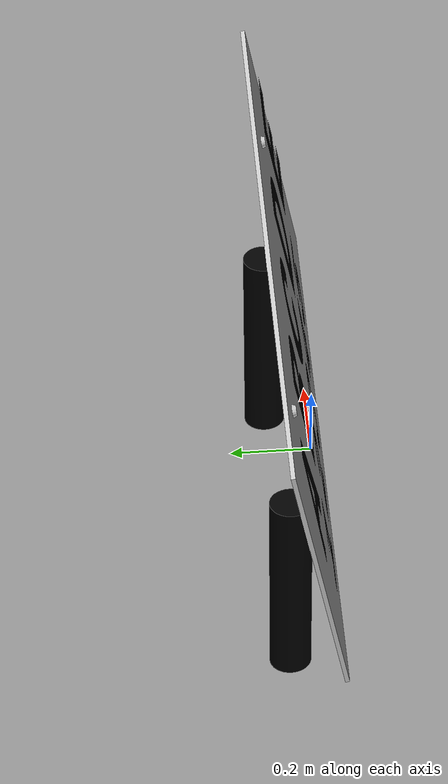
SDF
<?xml version="1.0"?>
<sdf version="1.9">
  <model name="Letter panel">
    <static>true</static>
    <link name="link">
      <collision name="collision">
        <geometry>
          <mesh>
            <scale>1 1 1</scale>
            <uri>model://Circuito/Letter Panel/meshes/letter_panel.dae</uri>
          </mesh>
        </geometry>
      </collision>
      <visual name="panel">
        <geometry>
          <mesh>
            <scale>1 1 1</scale>
            <uri>model://Circuito/Letter Panel/meshes/letter_panel.dae</uri>
          </mesh>
        </geometry>
      </visual>
    </link>
  </model>
</sdf>
